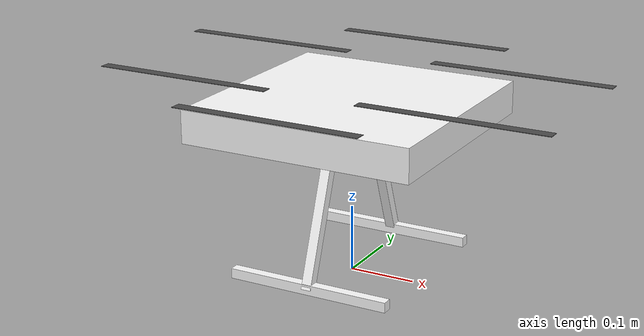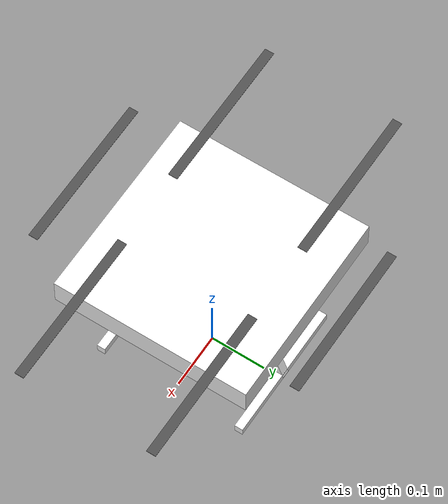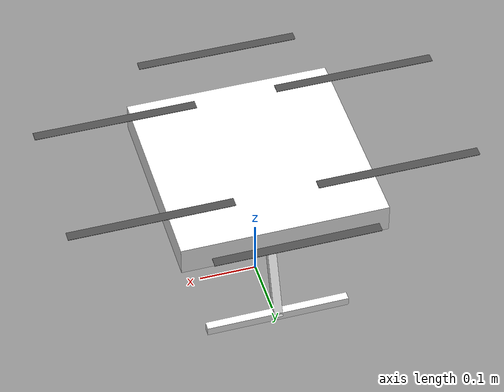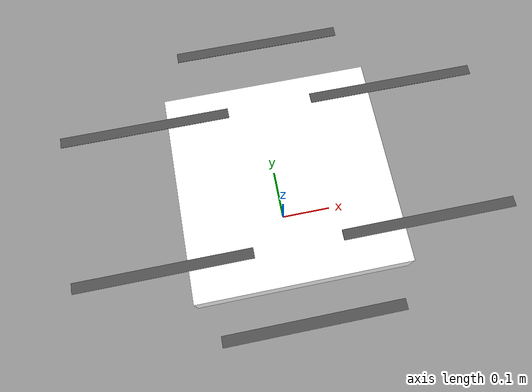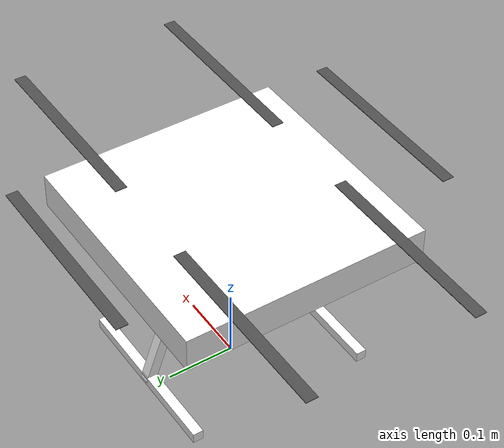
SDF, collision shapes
<?xml version="1.0" encoding="UTF-8"?>
<sdf version='1.9'>
  <model name='hexa'>

    <pose>0 0 .24 0 0 0</pose>
    <self_collide>false</self_collide>
    <static>false</static>
    <link name="base_link">
      <inertial>
        <mass>2.0</mass>
        <inertia>
          <ixx>0.02166666666666667</ixx>
          <ixy>0</ixy>
          <ixz>0</ixz>
          <iyy>0.02166666666666667</iyy>
          <iyz>0</iyz>
          <izz>0.04000000000000001</izz>
        </inertia>
      </inertial>
      <gravity>true</gravity>
      <velocity_decay/>
      <visual name="base_link_visual">
        <pose>0 0 .025 0 0 3.141592654</pose>
        <geometry>
          <mesh>
            <scale>1 1 1</scale>
            <uri>model://x500_base/meshes/NXP-HGD-CF.dae</uri>
          </mesh>
        </geometry>
      </visual>
      <visual name="5010_motor_base_0">
        <pose>0.174 0.174 .032 0 0 -.45</pose>
        <geometry>
          <mesh>
            <scale>1 1 1</scale>
            <uri>model://x500_base/meshes/5010Base.dae</uri>
          </mesh>
        </geometry>
      </visual>
      <visual name="5010_motor_base_1">
        <pose>-0.174 0.174 .032 0 0 -.45</pose>
        <geometry>
          <mesh>
            <scale>1 1 1</scale>
            <uri>model://x500_base/meshes/5010Base.dae</uri>
          </mesh>
        </geometry>
      </visual>
      <visual name="5010_motor_base_2">
        <pose>0.174 -0.174 .032 0 0 -.45</pose>
        <geometry>
          <mesh>
            <scale>1 1 1</scale>
            <uri>model://x500_base/meshes/5010Base.dae</uri>
          </mesh>
        </geometry>
      </visual>
      <visual name="5010_motoCA_AIRFRAMEr_base_3">
        <pose>-0.174 -0.174 .032 0 0 -.45</pose>
        <geometry>
          <mesh>
            <scale>1 1 1</scale>
            <uri>model://x500_base/meshes/5010Base.dae</uri>
          </mesh>
        </geometry>
      </visual>
      <visual name="NXP_FMUK66_FRONT">
        <pose>0.047 .001 .043 1 0 1.57</pose>
        <cast_shadows>false</cast_shadows>
        <geometry>
          <plane>
            <normal>0 0 1</normal>
            <size>.013 .007</size>
          </plane>
        </geometry>
        <material>
          <diffuse>1.0 1.0 1.0</diffuse>
          <specular>1.0 1.0 1.0</specular>
          <pbr>
            <metal>
              <albedo_map>model://x500_base/materials/textures/nxp.png</albedo_map>
            </metal>
          </pbr>
        </material>
      </visual>
      <visual name="NXP_FMUK66_TOP">
        <pose>-0.023 0 .0515 0 0 -1.57</pose>
        <cast_shadows>false</cast_shadows>
        <geometry>
          <plane>
            <normal>0 0 1</normal>
            <size>.013 .007</size>
          </plane>
        </geometry>
        <material>
          <diffuse>1.0 1.0 1.0</diffuse>
          <specular>1.0 1.0 1.0</specular>
          <pbr>
            <metal>
              <albedo_map>model://x500_base/materials/textures/nxp.png</albedo_map>
            </metal>
          </pbr>
        </material>
      </visual>
      <visual name="RDDRONE_FMUK66_TOP">
        <pose>-.03 0 .0515 0 0 -1.57</pose>
        <cast_shadows>false</cast_shadows>
        <geometry>
          <plane>
            <normal>0 0 1</normal>
            <size>.032 .0034</size>
          </plane>
        </geometry>
        <material>
          <diffuse>1.0 1.0 1.0</diffuse>
          <specular>1.0 1.0 1.0</specular>
          <pbr>
            <metal>
              <albedo_map>model://x500_base/materials/textures/rd.png</albedo_map>
            </metal>
          </pbr>
        </material>
      </visual>
      <collision name="base_link_collision_0">
        <pose>0 0 .007 0 0 0</pose>
        <geometry>
          <box>
            <size>0.35355339059327373 0.35355339059327373 0.05</size>
          </box>
        </geometry>
        <surface>
          <contact>
            <ode>
              <min_depth>0.001</min_depth>
              <max_vel>0</max_vel>
            </ode>
          </contact>
          <friction>
            <ode/>
          </friction>
        </surface>
      </collision>
      <collision name="base_link_collision_1">
        <pose>0 -0.098 -.123 -0.35 0 0</pose>
        <geometry>
          <box>
            <size>0.015 0.015 0.21</size>
          </box>
        </geometry>
        <surface>
          <contact>
            <ode>
              <min_depth>0.001</min_depth>
              <max_vel>0</max_vel>
            </ode>
          </contact>
          <friction>
            <ode/>
          </friction>
        </surface>
      </collision>
      <collision name="base_link_collision_2">
        <pose>0 0.098 -.123 0.35 0 0</pose>
        <geometry>
          <box>
            <size>0.015 0.015 0.21</size>
          </box>
        </geometry>
        <surface>
          <contact>
            <ode>
              <min_depth>0.001</min_depth>
              <max_vel>0</max_vel>
            </ode>
          </contact>
          <friction>
            <ode/>
          </friction>
        </surface>
      </collision>
      <collision name="base_link_collision_3">
        <pose>0 -0.132 -.2195 0 0 0</pose>
        <geometry>
          <box>
            <size>0.25 0.015 0.015</size>
          </box>
        </geometry>
        <surface>
          <contact>
            <ode>
              <min_depth>0.001</min_depth>
              <max_vel>0</max_vel>
            </ode>
          </contact>
          <friction>
            <ode/>
          </friction>
        </surface>
      </collision>
      <collision name="base_link_collision_4">
        <pose>0 0.132 -.2195 0 0 0</pose>
        <geometry>
          <box>
            <size>0.25 0.015 0.015</size>
          </box>
        </geometry>
        <surface>
          <contact>
            <ode>
              <min_depth>0.001</min_depth>
              <max_vel>0</max_vel>
            </ode>
          </contact>
          <friction>
            <ode/>
          </friction>
        </surface>
      </collision>
      <sensor name="air_pressure_sensor" type="air_pressure">
        <always_on>1</always_on>
        <update_rate>50</update_rate>
        <air_pressure>
          <pressure>
            <noise type="gaussian">
              <mean>0</mean>
              <stddev>0.01</stddev>
            </noise>
          </pressure>
        </air_pressure>
      </sensor>
      <sensor name="imu_sensor" type="imu">
        <always_on>1</always_on>
        <update_rate>250</update_rate>
        <imu>
          <angular_velocity>
            <x>
              <noise type="gaussian">
                <mean>0</mean>
                <stddev>0.00018665</stddev>
                <dynamic_bias_stddev>3.8785e-05</dynamic_bias_stddev>
                <dynamic_bias_correlation_time>1000</dynamic_bias_correlation_time>
              </noise>
            </x>
            <y>
              <noise type="gaussian">
                <mean>0</mean>
                <stddev>0.00018665</stddev>
                <dynamic_bias_stddev>3.8785e-05</dynamic_bias_stddev>
                <dynamic_bias_correlation_time>1000</dynamic_bias_correlation_time>
              </noise>
            </y>
            <z>
              <noise type="gaussian">
                <mean>0</mean>
                <stddev>0.00018665</stddev>
                <dynamic_bias_stddev>3.8785e-05</dynamic_bias_stddev>
                <dynamic_bias_correlation_time>1000</dynamic_bias_correlation_time>
              </noise>
            </z>
          </angular_velocity>
          <linear_acceleration>
            <x>
              <noise type="gaussian">
                <mean>0</mean>
                <stddev>0.00186</stddev>
                <dynamic_bias_stddev>0.006</dynamic_bias_stddev>
                <dynamic_bias_correlation_time>300</dynamic_bias_correlation_time>
              </noise>
            </x>
            <y>
              <noise type="gaussian">
                <mean>0</mean>
                <stddev>0.00186</stddev>
                <dynamic_bias_stddev>0.006</dynamic_bias_stddev>
                <dynamic_bias_correlation_time>300</dynamic_bias_correlation_time>
              </noise>
            </y>
            <z>
              <noise type="gaussian">
                <mean>0</mean>
                <stddev>0.00186</stddev>
                <dynamic_bias_stddev>0.006</dynamic_bias_stddev>
                <dynamic_bias_correlation_time>300</dynamic_bias_correlation_time>
              </noise>
            </z>
          </linear_acceleration>
        </imu>
      </sensor>
      <sensor name="navsat_sensor" type="navsat">
        <always_on>1</always_on>
        <update_rate>30</update_rate>
      </sensor>
    </link>

    <link name="rotor_0">
      <gravity>true</gravity>
      <self_collide>false</self_collide>
      <velocity_decay/>
      <pose>0 -0.24 0.06 0 0 0</pose>
      <inertial>
          <mass>0.016076923076923075</mass>
          <inertia>
            <ixx>3.8464910483993325e-07</ixx>
            <iyy>2.6115851691700804e-05</iyy>
            <izz>2.649858234714004e-05</izz>
          </inertia>
        </inertial>
      <visual name="rotor_0_visual">
        <pose>-0.022 -0.14638461538461536 -0.016 0 0 0</pose>
        <geometry>
          <mesh>
            <scale>0.8461538461538461 0.8461538461538461 0.8461538461538461</scale>
            <uri>model://x500_base/meshes/1345_prop_ccw.stl</uri>
          </mesh>
        </geometry>
        <material>
          <script>
            <name>Gazebo/DarkGrey</name>
            <uri>file://media/materials/scripts/gazebo.material</uri>
          </script>
        </material>
      </visual>
      <visual name="rotor_0_visual_motor_bell">
        <pose>0 0 -.032 0 0 0</pose>
        <geometry>
          <mesh>
            <scale>1 1 1</scale>
            <uri>model://x500_base/meshes/5010Bell.dae</uri>
          </mesh>
        </geometry>
      </visual>
      <collision name="rotor_0_collision">
        <pose>0 0 0 0 0 0 </pose>
        <geometry>
          <box>
            <size>0.2792307692307692 0.016923076923076923 0.0008461538461538462</size>
          </box>
        </geometry>
        <surface>
          <contact>
            <ode>
              <min_depth>0.001</min_depth>
              <max_vel>0</max_vel>
            </ode>
          </contact>
          <friction>
            <ode/>
          </friction>
        </surface>
      </collision>
    </link>
    <joint name="rotor_0_joint" type="revolute">
      <parent>base_link</parent>
      <child>rotor_0</child>
      <axis>
        <xyz>0 0 1</xyz>
        <limit>
          <lower>-1e+16</lower>
          <upper>1e+16</upper>
        </limit>
        <dynamics>
          <spring_reference>0</spring_reference>
          <spring_stiffness>0</spring_stiffness>
        </dynamics>
      </axis>
    </joint>
    <link name="rotor_1">
      <gravity>true</gravity>
      <self_collide>false</self_collide>
      <velocity_decay/>
      <pose>0 0.24 0.06 0 0 0</pose>
      <inertial>
          <mass>0.016076923076923075</mass>
          <inertia>
            <ixx>3.8464910483993325e-07</ixx>
            <iyy>2.6115851691700804e-05</iyy>
            <izz>2.649858234714004e-05</izz>
          </inertia>
        </inertial>
      <visual name="rotor_1_visual">
        <pose>-0.022 -0.14638461538461536 -0.016 0 0 0</pose>
        <geometry>
          <mesh>
            <scale>0.8461538461538461 0.8461538461538461 0.8461538461538461</scale>
            <uri>model://x500_base/meshes/1345_prop_ccw.stl</uri>
          </mesh>
        </geometry>
        <material>
          <script>
            <name>Gazebo/DarkGrey</name>
            <uri>file://media/materials/scripts/gazebo.material</uri>
          </script>
        </material>
      </visual>
      <visual name="rotor_1_visual_motor_top">
        <pose>0 0 -.032 0 0 0</pose>
        <geometry>
          <mesh>
            <scale>1 1 1</scale>
            <uri>model://x500_base/meshes/5010Bell.dae</uri>
          </mesh>
        </geometry>
      </visual>
      <collision name="rotor_1_collision">
        <pose>0 0 0 0 0 0 </pose>
        <geometry>
          <box>link
            <size>0.2792307692307692 0.016923076923076923 0.0008461538461538462</size>
          </box>
        </geometry>
        <surface>
          <contact>
            <ode>
              <min_depth>0.001</min_depth>
              <max_vel>0</max_vel>
            </ode>
          </contact>
          <friction>
            <ode/>
          </friction>
        </surface>
      </collision>
    </link>
    <joint name="rotor_1_joint" type="revolute">
      <parent>base_link</parent>
      <child>rotor_1</child>
      <axis>
        <xyz>0 0 1</xyz>
        <limit>
          <lower>-1e+16</lower>
          <upper>1e+16</upper>
        </limit>
        <dynamics>
          <spring_reference>0</spring_reference>
          <spring_stiffness>0</spring_stiffness>
        </dynamics>
      </axis>
    </joint>
    <link name="rotor_2">
      <gravity>true</gravity>
      <self_collide>false</self_collide>
      <velocity_decay/>
      <pose>0.21 0.12 0.06 0 0 0</pose>
      <inertial>
          <mass>0.016076923076923075</mass>
          <inertia>
            <ixx>3.8464910483993325e-07</ixx>
            <iyy>2.6115851691700804e-05</iyy>
            <izz>2.649858234714004e-05</izz>
          </inertia>
        </inertial>
      <visual name="rotor_2_visual">
        <pose>-0.022 -0.14638461538461536 -0.016 0 0 0</pose>
        <geometry>
          <mesh>
            <scale>0.8461538461538461 0.8461538461538461 0.8461538461538461</scale>
            <uri>model://x500_base/meshes/1345_prop_cw.stl</uri>
          </mesh>
        </geometry>
        <material>
          <script>
            <name>Gazebo/DarkGrey</name>
            <uri>file://media/materials/scripts/gazebo.material</uri>
          </script>
        </material>
      </visual>
      <visual name="rotor_2_visual_motor_top">
        <pose>0 0 -.032 0 0 0</pose>
        <geometry>
          <mesh>
            <scale>1 1 1</scale>
            <uri>model://x500_base/meshes/5010Bell.dae</uri>
          </mesh>
        </geometry>
      </visual>
      <collision name="rotor_2_collision">
        <pose>0 0 0 0 0 0 </pose>
        <geometry>
          <box>
            <size>0.2792307692307692 0.016923076923076923 0.0008461538461538462</size>
          </box>
        </geometry>
        <surface>
          <contact>
            <ode>
              <min_depth>0.001</min_depth>
              <max_vel>0</max_vel>
            </ode>
          </contact>
          <friction>
            <ode/>
          </friction>
        </surface>
      </collision>
    </link>
    <joint name="rotor_2_joint" type="revolute">
      <parent>base_link</parent>
      <child>rotor_2</child>
      <axis>
        <xyz>0 0 1</xyz>
        <limit>
          <lower>-1e+16</lower>
          <upper>1e+16</upper>
        </limit>
        <dynamics>
          <spring_reference>0</spring_reference>
          <spring_stiffness>0</spring_stiffness>
        </dynamics>
      </axis>
    </joint>
    <link name="rotor_3">
      <gravity>true</gravity>
      <self_collide>false</self_collide>
      <velocity_decay/>
      <pose>-0.21 -0.12 0.06 0 0 0</pose>
      <inertial>
          <mass>0.016076923076923075</mass>
          <inertia>
            <ixx>3.8464910483993325e-07</ixx>
            <iyy>2.6115851691700804e-05</iyy>
            <izz>2.649858234714004e-05</izz>
          </inertia>
        </inertial>
      <visual name="rotor_3_visual">
        <pose>-0.022 -0.14638461538461536 -0.016 0 0 0</pose>
        <geometry>
          <mesh>
            <scale>0.8461538461538461 0.8461538461538461 0.8461538461538461</scale>
            <uri>model://x500_base/meshes/1345_prop_cw.stl</uri>
          </mesh>
        </geometry>
        <material>
          <script>
            <name>Gazebo/DarkGrey</name>
            <uri>file://media/materials/scripts/gazebo.material</uri>
          </script>
        </material>
      </visual>
      <visual name="rotor_3_visual_motor_top">
        <pose>0 0 -.032 0 0 0</pose>
        <geometry>
          <mesh>
            <scale>1 1 1</scale>
            <uri>model://x500_base/meshes/5010Bell.dae</uri>
          </mesh>
        </geometry>
      </visual>
      <collision name="rotor_3_collision">
        <pose>0 0 0 0 0 0 </pose>
        <geometry>
          <box>
            <size>0.2792307692307692 0.016923076923076923 0.0008461538461538462</size>
          </box>
        </geometry>
        <surface>
          <contact>
            <ode>
              <min_depth>0.001</min_depth>
              <max_vel>0</max_vel>
            </ode>
          </contact>
          <friction>
            <ode/>
          </friction>
        </surface>
      </collision>
    </link>
    <joint name="rotor_3_joint" type="revolute">
      <parent>base_link</parent>
      <child>rotor_3</child>
      <axis>
        <xyz>0 0 1</xyz>
        <limit>
          <lower>-1e+16</lower>
          <upper>1e+16</upper>
        </limit>
        <dynamics>
          <spring_reference>0</spring_reference>
          <spring_stiffness>0</spring_stiffness>
        </dynamics>
      </axis>
    </joint>
    <link name="rotor_4">
      <gravity>true</gravity>
      <self_collide>false</self_collide>
      <velocity_decay/>
      <pose>0.21 -0.12 0.06 0 0 0</pose>
      <inertial>
          <mass>0.016076923076923075</mass>
          <inertia>
            <ixx>3.8464910483993325e-07</ixx>
            <iyy>2.6115851691700804e-05</iyy>
            <izz>2.649858234714004e-05</izz>
          </inertia>
        </inertial>
      <visual name="rotor_4_visual">
        <pose>-0.022 -0.14638461538461536 -0.016 0 0 0</pose>
        <geometry>
          <mesh>
            <scale>0.8461538461538461 0.8461538461538461 0.8461538461538461</scale>
            <uri>model://x500_base/meshes/1345_prop_cw.stl</uri>
          </mesh>
        </geometry>
        <material>
          <script>
            <name>Gazebo/DarkGrey</name>
            <uri>file://media/materials/scripts/gazebo.material</uri>
          </script>
        </material>
      </visual>
      <visual name="rotor_4_visual_motor_top">
        <pose>0 0 -.032 0 0 0</pose>
        <geometry>
          <mesh>
            <scale>1 1 1</scale>
            <uri>model://x500_base/meshes/5010Bell.dae</uri>
          </mesh>
        </geometry>
      </visual>
      <collision name="rotor_4_collision">
        <pose>0 0 0 0 0 0 </pose>
        <geometry>
          <box>
            <size>0.2792307692307692 0.016923076923076923 0.0008461538461538462</size>
          </box>
        </geometry>
        <surface>
          <contact>
            <ode>
              <min_depth>0.001</min_depth>
              <max_vel>0</max_vel>
            </ode>
          </contact>
          <friction>
            <ode/>
          </friction>
        </surface>
      </collision>
    </link>
    <joint name="rotor_4_joint" type="revolute">
      <parent>base_link</parent>
      <child>rotor_4</child>
      <axis>
        <xyz>0 0 1</xyz>
        <limit>
          <lower>-1e+16</lower>
          <upper>1e+16</upper>
        </limit>
        <dynamics>
          <spring_reference>0</spring_reference>
          <spring_stiffness>0</spring_stiffness>
        </dynamics>
      </axis>
    </joint>
    <link name="rotor_5">
      <gravity>true</gravity>
      <self_collide>false</self_collide>
      <velocity_decay/>
      <pose>-0.21 0.12 0.06 0 0 0</pose>
      <inertial>
          <mass>0.016076923076923075</mass>
          <inertia>
            <ixx>3.8464910483993325e-07</ixx>
            <iyy>2.6115851691700804e-05</iyy>
            <izz>2.649858234714004e-05</izz>
          </inertia>
        </inertial>
      <visual name="rotor_5_visual">
        <pose>-0.022 -0.14638461538461536 -0.016 0 0 0</pose>
        <geometry>
          <mesh>
            <scale>0.8461538461538461 0.8461538461538461 0.8461538461538461</scale>
            <uri>model://x500_base/meshes/1345_prop_cw.stl</uri>
          </mesh>
        </geometry>
        <material>
          <script>
            <name>Gazebo/DarkGrey</name>
            <uri>file://media/materials/scripts/gazebo.material</uri>
          </script>
        </material>
      </visual>
      <visual name="rotor_5_visual_motor_top">
        <pose>0 0 -.032 0 0 0</pose>
        <geometry>
          <mesh>
            <scale>1 1 1</scale>
            <uri>model://x500_base/meshes/5010Bell.dae</uri>
          </mesh>
        </geometry>
      </visual>
      <collision name="rotor_5_collision">
        <pose>0 0 0 0 0 0 </pose>
        <geometry>
          <box>
            <size>0.2792307692307692 0.016923076923076923 0.0008461538461538462</size>
          </box>
        </geometry>
        <surface>
          <contact>
            <ode>
              <min_depth>0.001</min_depth>
              <max_vel>0</max_vel>
            </ode>
          </contact>
          <friction>
            <ode/>
          </friction>
        </surface>
      </collision>
    </link>
    <joint name="rotor_5_joint" type="revolute">
      <parent>base_link</parent>
      <child>rotor_5</child>
      <axis>
        <xyz>0 0 1</xyz>
        <limit>
          <lower>-1e+16</lower>
          <upper>1e+16</upper>
        </limit>
        <dynamics>
          <spring_reference>0</spring_reference>
          <spring_stiffness>0</spring_stiffness>
        </dynamics>
      </axis>
    </joint>

    <plugin filename="gz-sim-multicopter-motor-model-system" name="gz::sim::systems::MulticopterMotorModel">
      <jointName>rotor_0_joint</jointName>
      <linkName>rotor_0</linkName>
      <turningDirection>cw</turningDirection>
      <timeConstantUp>0.0125</timeConstantUp>
      <timeConstantDown>0.025</timeConstantDown>
      <maxRotVelocity>1000.0</maxRotVelocity>
      <motorConstant>8.54858e-06</motorConstant>
      <momentConstant>0.016</momentConstant>
      <commandSubTopic>command/motor_speed</commandSubTopic>
      <motorNumber>0</motorNumber>
      <rotorDragCoefficient>8.06428e-05</rotorDragCoefficient>
      <rollingMomentCoefficient>1e-06</rollingMomentCoefficient>
      <rotorVelocitySlowdownSim>10</rotorVelocitySlowdownSim>
      <motorType>velocity</motorType>
    </plugin>
    <plugin filename="gz-sim-multicopter-motor-model-system" name="gz::sim::systems::MulticopterMotorModel">
      <jointName>rotor_1_joint</jointName>
      <linkName>rotor_1</linkName>
      <turningDirection>ccw</turningDirection>
      <timeConstantUp>0.0125</timeConstantUp>
      <timeConstantDown>0.025</timeConstantDown>
      <maxRotVelocity>1000.0</maxRotVelocity>
      <motorConstant>8.54858e-06</motorConstant>
      <momentConstant>0.016</momentConstant>
      <commandSubTopic>command/motor_speed</commandSubTopic>
      <motorNumber>1</motorNumber>
      <rotorDragCoefficient>8.06428e-05</rotorDragCoefficient>
      <rollingMomentCoefficient>1e-06</rollingMomentCoefficient>
      <rotorVelocitySlowdownSim>10</rotorVelocitySlowdownSim>
      <motorType>velocity</motorType>
    </plugin>
    <plugin filename="gz-sim-multicopter-motor-model-system" name="gz::sim::systems::MulticopterMotorModel">
      <jointName>rotor_2_joint</jointName>
      <linkName>rotor_2</linkName>
      <turningDirection>cw</turningDirection>
      <timeConstantUp>0.0125</timeConstantUp>
      <timeConstantDown>0.025</timeConstantDown>
      <maxRotVelocity>1000.0</maxRotVelocity>
      <motorConstant>8.54858e-06</motorConstant>
      <momentConstant>0.016</momentConstant>
      <commandSubTopic>command/motor_speed</commandSubTopic>
      <motorNumber>2</motorNumber>
      <rotorDragCoefficient>8.06428e-05</rotorDragCoefficient>
      <rollingMomentCoefficient>1e-06</rollingMomentCoefficient>
      <rotorVelocitySlowdownSim>10</rotorVelocitySlowdownSim>
      <motorType>velocity</motorType>
    </plugin>
    <plugin filename="gz-sim-multicopter-motor-model-system" name="gz::sim::systems::MulticopterMotorModel">
      <jointName>rotor_3_joint</jointName>
      <linkName>rotor_3</linkName>
      <turningDirection>ccw</turningDirection>
      <timeConstantUp>0.0125</timeConstantUp>
      <timeConstantDown>0.025</timeConstantDown>
      <maxRotVelocity>1000.0</maxRotVelocity>
      <motorConstant>8.54858e-06</motorConstant>
      <momentConstant>0.016</momentConstant>
      <commandSubTopic>command/motor_speed</commandSubTopic>
      <motorNumber>3</motorNumber>
      <rotorDragCoefficient>8.06428e-05</rotorDragCoefficient>
      <rollingMomentCoefficient>1e-06</rollingMomentCoefficient>
      <rotorVelocitySlowdownSim>10</rotorVelocitySlowdownSim>
      <motorType>velocity</motorType>
    </plugin>
    <plugin filename="gz-sim-multicopter-motor-model-system" name="gz::sim::systems::MulticopterMotorModel">
      <jointName>rotor_4_joint</jointName>
      <linkName>rotor_4</linkName>
      <turningDirection>ccw</turningDirection>
      <timeConstantUp>0.0125</timeConstantUp>
      <timeConstantDown>0.025</timeConstantDown>
      <maxRotVelocity>1000.0</maxRotVelocity>
      <motorConstant>8.54858e-06</motorConstant>
      <momentConstant>0.016</momentConstant>
      <commandSubTopic>command/motor_speed</commandSubTopic>
      <motorNumber>4</motorNumber>
      <rotorDragCoefficient>8.06428e-05</rotorDragCoefficient>
      <rollingMomentCoefficient>1e-06</rollingMomentCoefficient>
      <rotorVelocitySlowdownSim>10</rotorVelocitySlowdownSim>
      <motorType>velocity</motorType>
    </plugin>
    <plugin filename="gz-sim-multicopter-motor-model-system" name="gz::sim::systems::MulticopterMotorModel">
      <jointName>rotor_5_joint</jointName>
      <linkName>rotor_5</linkName>
      <turningDirection>cw</turningDirection>
      <timeConstantUp>0.0125</timeConstantUp>
      <timeConstantDown>0.025</timeConstantDown>
      <maxRotVelocity>1000.0</maxRotVelocity>
      <motorConstant>8.54858e-06</motorConstant>
      <momentConstant>0.016</momentConstant>
      <commandSubTopic>command/motor_speed</commandSubTopic>
      <motorNumber>5</motorNumber>
      <rotorDragCoefficient>8.06428e-05</rotorDragCoefficient>
      <rollingMomentCoefficient>1e-06</rollingMomentCoefficient>
      <rotorVelocitySlowdownSim>10</rotorVelocitySlowdownSim>
      <motorType>velocity</motorType>
    </plugin>

  </model>
</sdf>
